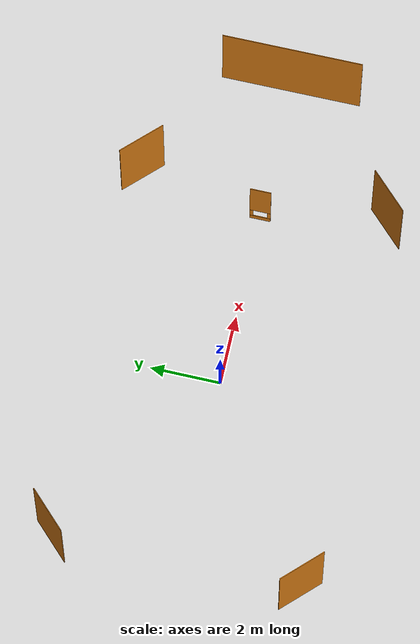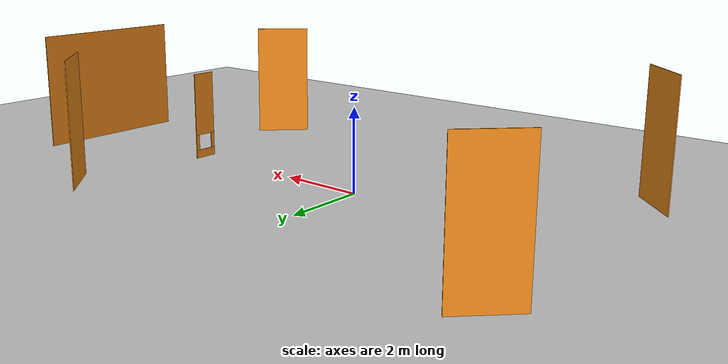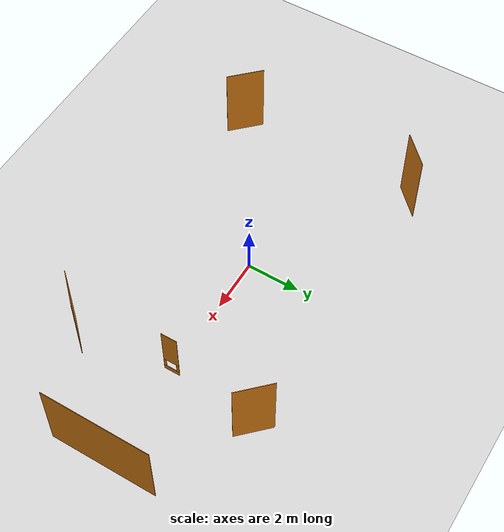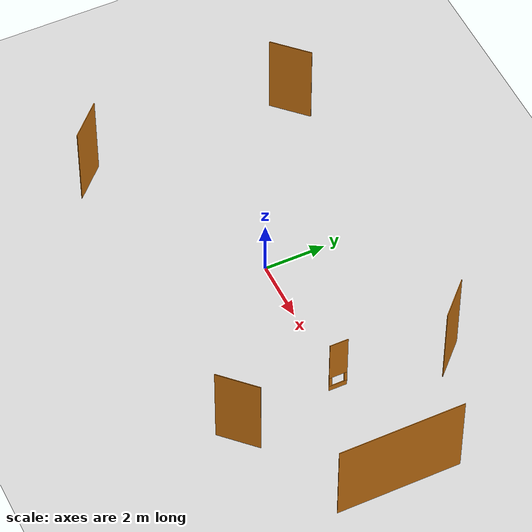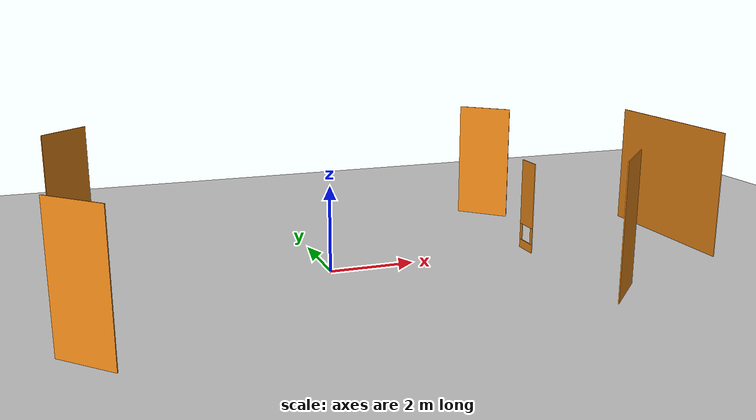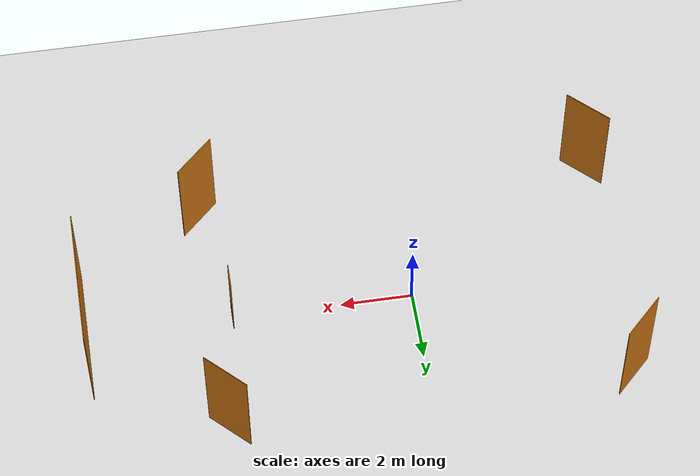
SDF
<sdf version="1.5">
 <world name="default">
  <include><uri>model://sun</uri></include>
  <include><uri>model://ground_plane</uri><pose>0 0 -0.001 0 0 0</pose></include>
  <model name="wall_0">
   <pose frame="''">0 0 0 0 0 0</pose>
   <link name="link_0">
    <gravity>0</gravity>
    <kinematic>1</kinematic>
    <visual name="wall_0_visual_0">
     <pose>5.5 3.5 1.5 0 0 2.35619449019</pose>
     <geometry><box><size>1.41421356237 0.02 3.0</size></box></geometry>
     <material>
      <script><uri>file://media/materials/scripts/gazebo.material</uri><name>Gazebo/Orange</name></script>
     </material>
    </visual>
    <collision name="wall_0_collision_0">
     <pose>5.5 3.5 1.5 0 0 2.35619449019</pose>
     <geometry><box><size>1.41421356237 0.02 3.0</size></box></geometry>
    </collision>
   </link>
  </model>
  <model name="wall_1">
   <pose frame="''">0 0 0 0 0 0</pose>
   <link name="link_0">
    <gravity>0</gravity>
    <kinematic>1</kinematic>
    <visual name="wall_1_visual_0">
     <pose>-5.5 3.5 1.5 0 0 -2.35619449019</pose>
     <geometry><box><size>1.41421356237 0.02 3.0</size></box></geometry>
     <material>
      <script><uri>file://media/materials/scripts/gazebo.material</uri><name>Gazebo/Orange</name></script>
     </material>
    </visual>
    <collision name="wall_1_collision_0">
     <pose>-5.5 3.5 1.5 0 0 -2.35619449019</pose>
     <geometry><box><size>1.41421356237 0.02 3.0</size></box></geometry>
    </collision>
   </link>
  </model>
  <model name="wall_2">
   <pose frame="''">0 0 0 0 0 0</pose>
   <link name="link_0">
    <gravity>0</gravity>
    <kinematic>1</kinematic>
    <visual name="wall_2_visual_0">
     <pose>-5.5 -3.5 1.5 0 0 -0.785398163397</pose>
     <geometry><box><size>1.41421356237 0.02 3.0</size></box></geometry>
     <material>
      <script><uri>file://media/materials/scripts/gazebo.material</uri><name>Gazebo/Orange</name></script>
     </material>
    </visual>
    <collision name="wall_2_collision_0">
     <pose>-5.5 -3.5 1.5 0 0 -0.785398163397</pose>
     <geometry><box><size>1.41421356237 0.02 3.0</size></box></geometry>
    </collision>
   </link>
  </model>
  <model name="wall_3">
   <pose frame="''">0 0 0 0 0 0</pose>
   <link name="link_0">
    <gravity>0</gravity>
    <kinematic>1</kinematic>
    <visual name="wall_3_visual_0">
     <pose>5.5 -3.5 1.5 0 0 0.785398163397</pose>
     <geometry><box><size>1.41421356237 0.02 3.0</size></box></geometry>
     <material>
      <script><uri>file://media/materials/scripts/gazebo.material</uri><name>Gazebo/Orange</name></script>
     </material>
    </visual>
    <collision name="wall_3_collision_0">
     <pose>5.5 -3.5 1.5 0 0 0.785398163397</pose>
     <geometry><box><size>1.41421356237 0.02 3.0</size></box></geometry>
    </collision>
   </link>
  </model>
  <model name="wall_4">
   <pose frame="''">0 0 0 0 0 0</pose>
   <link name="link_0">
    <gravity>0</gravity>
    <kinematic>1</kinematic>
    <visual name="wall_4_visual_0">
     <pose>9.0 0.0 1.5 0 0 1.57079632679</pose>
     <geometry><box><size>4.0 0.02 3.0</size></box></geometry>
     <material>
      <script><uri>file://media/materials/scripts/gazebo.material</uri><name>Gazebo/Orange</name></script>
     </material>
    </visual>
    <collision name="wall_4_collision_0">
     <pose>9.0 0.0 1.5 0 0 1.57079632679</pose>
     <geometry><box><size>4.0 0.02 3.0</size></box></geometry>
    </collision>
   </link>
  </model>
  <model name="gate_0">
   <pose frame="''">0 0 0 0 0 0</pose>
   <link name="link_0">
    <gravity>0</gravity>
    <kinematic>1</kinematic>
    <visual name="gate_0_visual_0">
     <pose>5.0 0.25 0.41 0 0 -1.57079632679</pose>
     <geometry><box><size>0.1 0.02 0.4</size></box></geometry>
     <material>
      <script><uri>file://media/materials/scripts/gazebo.material</uri><name>Gazebo/Orange</name></script>
     </material>
    </visual>
    <collision name="gate_0_collision_0">
     <pose>5.0 0.25 0.41 0 0 -1.57079632679</pose>
     <geometry><box><size>0.1 0.02 0.4</size></box></geometry>
    </collision>
    <gravity>0</gravity>
    <kinematic>1</kinematic>
    <visual name="gate_0_visual_1">
     <pose>5.0 -0.25 0.41 0 0 -1.57079632679</pose>
     <geometry><box><size>0.1 0.02 0.4</size></box></geometry>
     <material>
      <script><uri>file://media/materials/scripts/gazebo.material</uri><name>Gazebo/Orange</name></script>
     </material>
    </visual>
    <collision name="gate_0_collision_1">
     <pose>5.0 -0.25 0.41 0 0 -1.57079632679</pose>
     <geometry><box><size>0.1 0.02 0.4</size></box></geometry>
    </collision>
    <gravity>0</gravity>
    <kinematic>1</kinematic>
    <visual name="gate_0_visual_2">
     <pose>5.0 0.0 0.105 0 0 -1.57079632679</pose>
     <geometry><box><size>0.6 0.02 0.21</size></box></geometry>
     <material>
      <script><uri>file://media/materials/scripts/gazebo.material</uri><name>Gazebo/Orange</name></script>
     </material>
    </visual>
    <collision name="gate_0_collision_2">
     <pose>5.0 0.0 0.105 0 0 -1.57079632679</pose>
     <geometry><box><size>0.6 0.02 0.21</size></box></geometry>
    </collision>
    <gravity>0</gravity>
    <kinematic>1</kinematic>
    <visual name="gate_0_visual_3">
     <pose>5.0 0.0 1.41 0 0 -1.57079632679</pose>
     <geometry><box><size>0.6 0.02 1.6</size></box></geometry>
     <material>
      <script><uri>file://media/materials/scripts/gazebo.material</uri><name>Gazebo/Orange</name></script>
     </material>
    </visual>
    <collision name="gate_0_collision_3">
     <pose>5.0 0.0 1.41 0 0 -1.57079632679</pose>
     <geometry><box><size>0.6 0.02 1.6</size></box></geometry>
    </collision>
   </link>
  </model>
  <physics default="0" name="default_physics" type="ode">
   <gravity>0 0 -9.8066</gravity>
   <ode>
    <solver>
     <type>quick</type>
     <iters>20</iters>
     <sor>1.3</sor>
     <use_dynamic_moi_rescaling>0</use_dynamic_moi_rescaling>
    </solver>
    <constraints>
     <cfm>0</cfm>
     <erp>0.2</erp>
     <contact_max_correcting_vel>100</contact_max_correcting_vel>
     <contact_surface_layer>0.001</contact_surface_layer>
    </constraints>
   </ode>
   <max_step_size>0.002</max_step_size>
   <real_time_factor>1</real_time_factor>
   <real_time_update_rate>500</real_time_update_rate>
   <magnetic_field>6e-06 2.3e-05 -4.2e-05</magnetic_field>
  </physics>
 </world>
</sdf>
